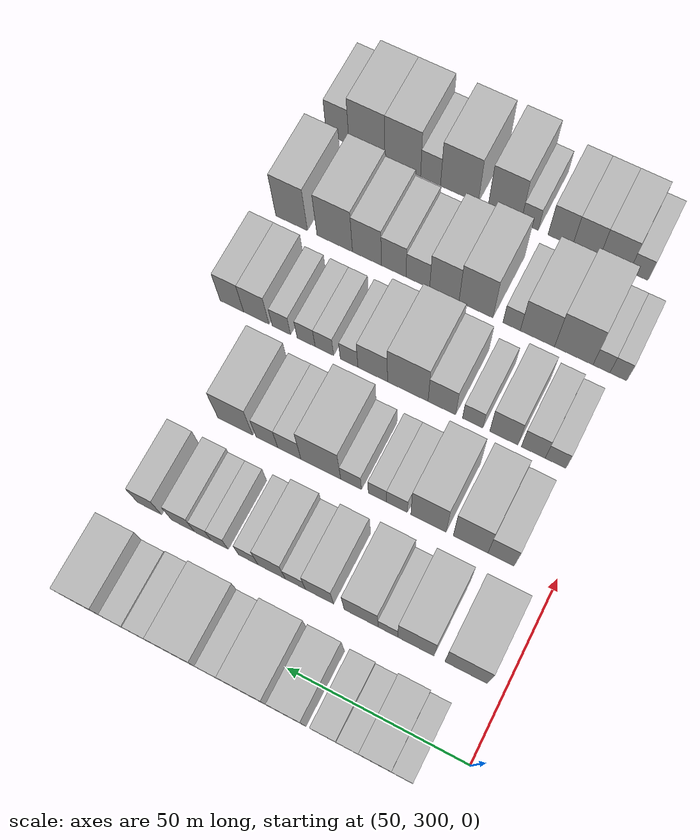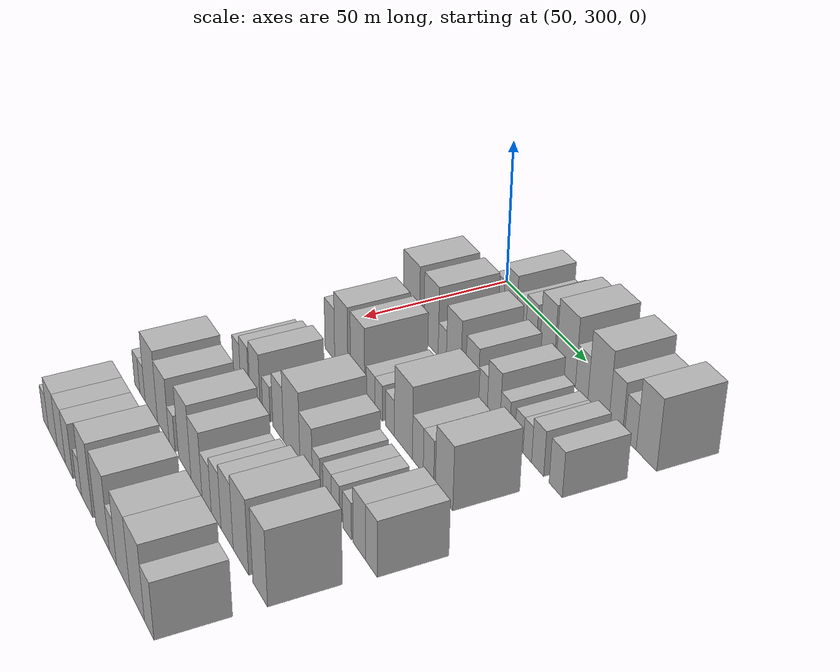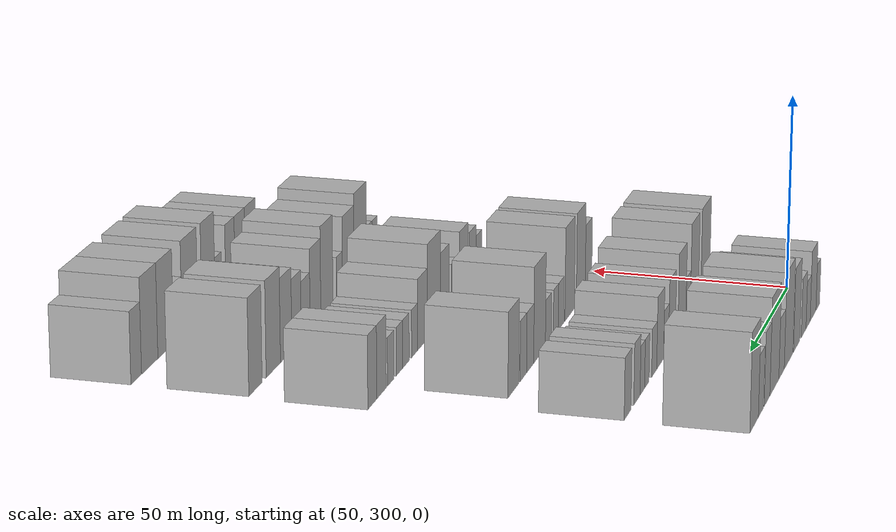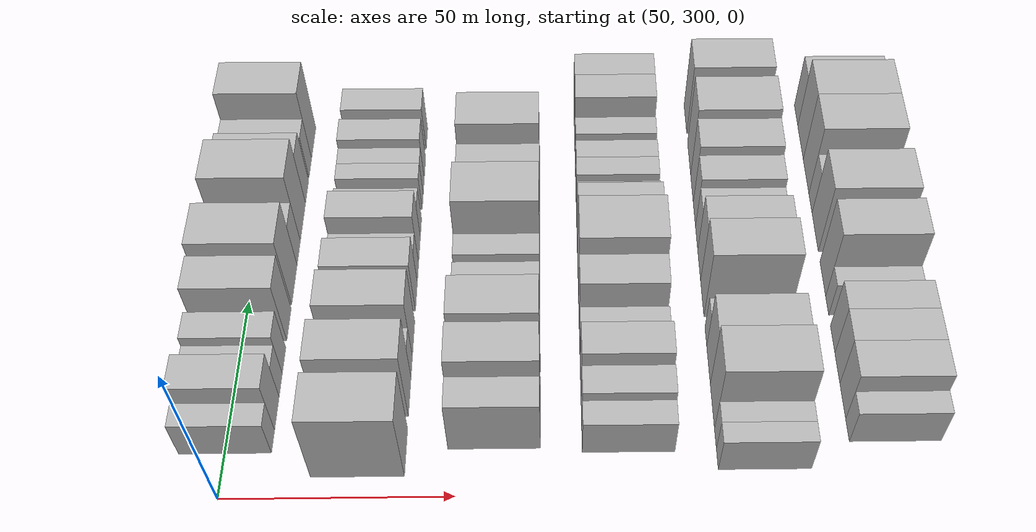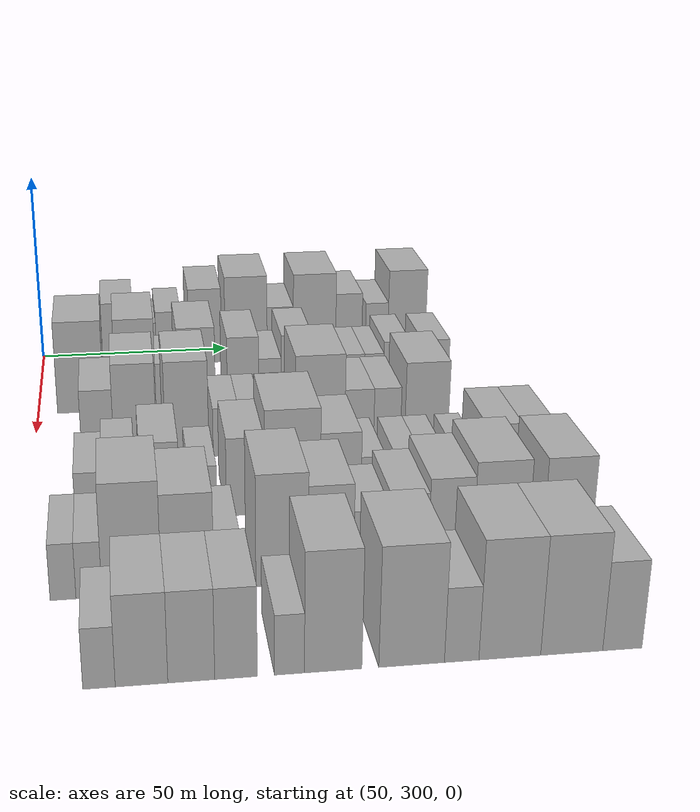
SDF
<sdf version="1.6">
 <world name="default">
  <model name="building_97">
   <static>1</static>
   <pose>50.0000 313.3781 0 0.000000 0.000000 0.000000</pose>
   <link name="link">
    <pose>0 0 6.00 0 0 0</pose>
    <collision name="collision"><geometry><box><size>20.0000 5.5416 12.0000</size></box></geometry></collision>
    <visual name="visual">
     <cast_shadows>0</cast_shadows>
     <geometry><box><size>20.0000 5.5416 12.0000</size></box></geometry>
     <material>
      <script>
       <uri>model://HANNAS_wall/materials/scripts</uri>
       <uri>model://HANNAS_wall/materials/textures</uri>
       <name>vrc/HANNAS_wall</name>
      </script>
     </material>
    </visual>
   </link>
  </model>
  <model name="building_98">
   <static>1</static>
   <pose>50.0000 320.3445 0 0.000000 0.000000 0.000000</pose>
   <link name="link">
    <pose>0 0 9.00 0 0 0</pose>
    <collision name="collision"><geometry><box><size>20.0000 8.3913 18.0000</size></box></geometry></collision>
    <visual name="visual">
     <cast_shadows>0</cast_shadows>
     <geometry><box><size>20.0000 8.3913 18.0000</size></box></geometry>
     <material>
      <script>
       <uri>model://HANNAS_wall/materials/scripts</uri>
       <uri>model://HANNAS_wall/materials/textures</uri>
       <name>vrc/HANNAS_wall</name>
      </script>
     </material>
    </visual>
   </link>
  </model>
  <model name="building_99">
   <static>1</static>
   <pose>50.0000 327.5228 0 0.000000 0.000000 0.000000</pose>
   <link name="link">
    <pose>0 0 6.00 0 0 0</pose>
    <collision name="collision"><geometry><box><size>20.0000 5.9652 12.0000</size></box></geometry></collision>
    <visual name="visual">
     <cast_shadows>0</cast_shadows>
     <geometry><box><size>20.0000 5.9652 12.0000</size></box></geometry>
     <material>
      <script>
       <uri>model://HANNAS_wall/materials/scripts</uri>
       <uri>model://HANNAS_wall/materials/textures</uri>
       <name>vrc/HANNAS_wall</name>
      </script>
     </material>
    </visual>
   </link>
  </model>
  <model name="building_100">
   <static>1</static>
   <pose>50.0000 333.9000 0 0.000000 0.000000 0.000000</pose>
   <link name="link">
    <pose>0 0 7.50 0 0 0</pose>
    <collision name="collision"><geometry><box><size>20.0000 6.7892 15.0000</size></box></geometry></collision>
    <visual name="visual">
     <cast_shadows>0</cast_shadows>
     <geometry><box><size>20.0000 6.7892 15.0000</size></box></geometry>
     <material>
      <script>
       <uri>model://HANNAS_wall/materials/scripts</uri>
       <uri>model://HANNAS_wall/materials/textures</uri>
       <name>vrc/HANNAS_wall</name>
      </script>
     </material>
    </visual>
   </link>
  </model>
  <model name="building_101">
   <static>1</static>
   <pose>50.0000 343.7053 0 0.000000 0.000000 0.000000</pose>
   <link name="link">
    <pose>0 0 10.50 0 0 0</pose>
    <collision name="collision"><geometry><box><size>20.0000 8.8215 21.0000</size></box></geometry></collision>
    <visual name="visual">
     <cast_shadows>0</cast_shadows>
     <geometry><box><size>20.0000 8.8215 21.0000</size></box></geometry>
     <material>
      <script>
       <uri>model://HANNAS_wall/materials/scripts</uri>
       <uri>model://HANNAS_wall/materials/textures</uri>
       <name>vrc/HANNAS_wall</name>
      </script>
     </material>
    </visual>
   </link>
  </model>
  <model name="building_102">
   <static>1</static>
   <pose>50.0000 354.8463 0 0.000000 0.000000 0.000000</pose>
   <link name="link">
    <pose>0 0 12.00 0 0 0</pose>
    <collision name="collision"><geometry><box><size>20.0000 11.4603 24.0000</size></box></geometry></collision>
    <visual name="visual">
     <cast_shadows>0</cast_shadows>
     <geometry><box><size>20.0000 11.4603 24.0000</size></box></geometry>
     <material>
      <script>
       <uri>model://HANNAS_wall/materials/scripts</uri>
       <uri>model://HANNAS_wall/materials/textures</uri>
       <name>vrc/HANNAS_wall</name>
      </script>
     </material>
    </visual>
   </link>
  </model>
  <model name="building_103">
   <static>1</static>
   <pose>50.0000 364.1561 0 0.000000 0.000000 0.000000</pose>
   <link name="link">
    <pose>0 0 7.50 0 0 0</pose>
    <collision name="collision"><geometry><box><size>20.0000 7.1593 15.0000</size></box></geometry></collision>
    <visual name="visual">
     <cast_shadows>0</cast_shadows>
     <geometry><box><size>20.0000 7.1593 15.0000</size></box></geometry>
     <material>
      <script>
       <uri>model://HANNAS_wall/materials/scripts</uri>
       <uri>model://HANNAS_wall/materials/textures</uri>
       <name>vrc/HANNAS_wall</name>
      </script>
     </material>
    </visual>
   </link>
  </model>
  <model name="building_104">
   <static>1</static>
   <pose>50.0000 373.5831 0 0.000000 0.000000 0.000000</pose>
   <link name="link">
    <pose>0 0 12.00 0 0 0</pose>
    <collision name="collision"><geometry><box><size>20.0000 11.6948 24.0000</size></box></geometry></collision>
    <visual name="visual">
     <cast_shadows>0</cast_shadows>
     <geometry><box><size>20.0000 11.6948 24.0000</size></box></geometry>
     <material>
      <script>
       <uri>model://HANNAS_wall/materials/scripts</uri>
       <uri>model://HANNAS_wall/materials/textures</uri>
       <name>vrc/HANNAS_wall</name>
      </script>
     </material>
    </visual>
   </link>
  </model>
  <model name="building_105">
   <static>1</static>
   <pose>50.0000 383.0555 0 0.000000 0.000000 0.000000</pose>
   <link name="link">
    <pose>0 0 9.00 0 0 0</pose>
    <collision name="collision"><geometry><box><size>20.0000 7.2501 18.0000</size></box></geometry></collision>
    <visual name="visual">
     <cast_shadows>0</cast_shadows>
     <geometry><box><size>20.0000 7.2501 18.0000</size></box></geometry>
     <material>
      <script>
       <uri>model://HANNAS_wall/materials/scripts</uri>
       <uri>model://HANNAS_wall/materials/textures</uri>
       <name>vrc/HANNAS_wall</name>
      </script>
     </material>
    </visual>
   </link>
  </model>
  <model name="building_106">
   <static>1</static>
   <pose>50.0000 390.7964 0 0.000000 0.000000 0.000000</pose>
   <link name="link">
    <pose>0 0 7.50 0 0 0</pose>
    <collision name="collision"><geometry><box><size>20.0000 6.2317 15.0000</size></box></geometry></collision>
    <visual name="visual">
     <cast_shadows>0</cast_shadows>
     <geometry><box><size>20.0000 6.2317 15.0000</size></box></geometry>
     <material>
      <script>
       <uri>model://HANNAS_wall/materials/scripts</uri>
       <uri>model://HANNAS_wall/materials/textures</uri>
       <name>vrc/HANNAS_wall</name>
      </script>
     </material>
    </visual>
   </link>
  </model>
  <model name="building_107">
   <static>1</static>
   <pose>50.0000 399.1808 0 0.000000 0.000000 0.000000</pose>
   <link name="link">
    <pose>0 0 12.00 0 0 0</pose>
    <collision name="collision"><geometry><box><size>20.0000 10.5371 24.0000</size></box></geometry></collision>
    <visual name="visual">
     <cast_shadows>0</cast_shadows>
     <geometry><box><size>20.0000 10.5371 24.0000</size></box></geometry>
     <material>
      <script>
       <uri>model://HANNAS_wall/materials/scripts</uri>
       <uri>model://HANNAS_wall/materials/textures</uri>
       <name>vrc/HANNAS_wall</name>
      </script>
     </material>
    </visual>
   </link>
  </model>
  <model name="building_210">
   <static>1</static>
   <pose>79.0000 310.5097 0 0.000000 0.000000 0.000000</pose>
   <link name="link">
    <pose>0 0 12.00 0 0 0</pose>
    <collision name="collision"><geometry><box><size>20.0000 11.4458 24.0000</size></box></geometry></collision>
    <visual name="visual">
     <cast_shadows>0</cast_shadows>
     <geometry><box><size>20.0000 11.4458 24.0000</size></box></geometry>
     <material>
      <script>
       <uri>model://HANNAS_wall/materials/scripts</uri>
       <uri>model://HANNAS_wall/materials/textures</uri>
       <name>vrc/HANNAS_wall</name>
      </script>
     </material>
    </visual>
   </link>
  </model>
  <model name="building_211">
   <static>1</static>
   <pose>79.0000 324.2015 0 0.000000 0.000000 0.000000</pose>
   <link name="link">
    <pose>0 0 12.00 0 0 0</pose>
    <collision name="collision"><geometry><box><size>20.0000 9.9378 24.0000</size></box></geometry></collision>
    <visual name="visual">
     <cast_shadows>0</cast_shadows>
     <geometry><box><size>20.0000 9.9378 24.0000</size></box></geometry>
     <material>
      <script>
       <uri>model://HANNAS_wall/materials/scripts</uri>
       <uri>model://HANNAS_wall/materials/textures</uri>
       <name>vrc/HANNAS_wall</name>
      </script>
     </material>
    </visual>
   </link>
  </model>
  <model name="building_212">
   <static>1</static>
   <pose>79.0000 331.8921 0 0.000000 0.000000 0.000000</pose>
   <link name="link">
    <pose>0 0 6.00 0 0 0</pose>
    <collision name="collision"><geometry><box><size>20.0000 5.4434 12.0000</size></box></geometry></collision>
    <visual name="visual">
     <cast_shadows>0</cast_shadows>
     <geometry><box><size>20.0000 5.4434 12.0000</size></box></geometry>
     <material>
      <script>
       <uri>model://HANNAS_wall/materials/scripts</uri>
       <uri>model://HANNAS_wall/materials/textures</uri>
       <name>vrc/HANNAS_wall</name>
      </script>
     </material>
    </visual>
   </link>
  </model>
  <model name="building_213">
   <static>1</static>
   <pose>79.0000 339.3611 0 0.000000 0.000000 0.000000</pose>
   <link name="link">
    <pose>0 0 10.50 0 0 0</pose>
    <collision name="collision"><geometry><box><size>20.0000 9.4948 21.0000</size></box></geometry></collision>
    <visual name="visual">
     <cast_shadows>0</cast_shadows>
     <geometry><box><size>20.0000 9.4948 21.0000</size></box></geometry>
     <material>
      <script>
       <uri>model://HANNAS_wall/materials/scripts</uri>
       <uri>model://HANNAS_wall/materials/textures</uri>
       <name>vrc/HANNAS_wall</name>
      </script>
     </material>
    </visual>
   </link>
  </model>
  <model name="building_214">
   <static>1</static>
   <pose>79.0000 351.0797 0 0.000000 0.000000 0.000000</pose>
   <link name="link">
    <pose>0 0 9.00 0 0 0</pose>
    <collision name="collision"><geometry><box><size>20.0000 7.9424 18.0000</size></box></geometry></collision>
    <visual name="visual">
     <cast_shadows>0</cast_shadows>
     <geometry><box><size>20.0000 7.9424 18.0000</size></box></geometry>
     <material>
      <script>
       <uri>model://HANNAS_wall/materials/scripts</uri>
       <uri>model://HANNAS_wall/materials/textures</uri>
       <name>vrc/HANNAS_wall</name>
      </script>
     </material>
    </visual>
   </link>
  </model>
  <model name="building_215">
   <static>1</static>
   <pose>79.0000 357.9109 0 0.000000 0.000000 0.000000</pose>
   <link name="link">
    <pose>0 0 6.00 0 0 0</pose>
    <collision name="collision"><geometry><box><size>20.0000 5.7200 12.0000</size></box></geometry></collision>
    <visual name="visual">
     <cast_shadows>0</cast_shadows>
     <geometry><box><size>20.0000 5.7200 12.0000</size></box></geometry>
     <material>
      <script>
       <uri>model://HANNAS_wall/materials/scripts</uri>
       <uri>model://HANNAS_wall/materials/textures</uri>
       <name>vrc/HANNAS_wall</name>
      </script>
     </material>
    </visual>
   </link>
  </model>
  <model name="building_216">
   <static>1</static>
   <pose>79.0000 364.6596 0 0.000000 0.000000 0.000000</pose>
   <link name="link">
    <pose>0 0 9.00 0 0 0</pose>
    <collision name="collision"><geometry><box><size>20.0000 7.7775 18.0000</size></box></geometry></collision>
    <visual name="visual">
     <cast_shadows>0</cast_shadows>
     <geometry><box><size>20.0000 7.7775 18.0000</size></box></geometry>
     <material>
      <script>
       <uri>model://HANNAS_wall/materials/scripts</uri>
       <uri>model://HANNAS_wall/materials/textures</uri>
       <name>vrc/HANNAS_wall</name>
      </script>
     </material>
    </visual>
   </link>
  </model>
  <model name="building_217">
   <static>1</static>
   <pose>79.0000 371.3721 0 0.000000 0.000000 0.000000</pose>
   <link name="link">
    <pose>0 0 6.00 0 0 0</pose>
    <collision name="collision"><geometry><box><size>20.0000 5.6476 12.0000</size></box></geometry></collision>
    <visual name="visual">
     <cast_shadows>0</cast_shadows>
     <geometry><box><size>20.0000 5.6476 12.0000</size></box></geometry>
     <material>
      <script>
       <uri>model://HANNAS_wall/materials/scripts</uri>
       <uri>model://HANNAS_wall/materials/textures</uri>
       <name>vrc/HANNAS_wall</name>
      </script>
     </material>
    </visual>
   </link>
  </model>
  <model name="building_218">
   <static>1</static>
   <pose>79.0000 379.6240 0 0.000000 0.000000 0.000000</pose>
   <link name="link">
    <pose>0 0 6.00 0 0 0</pose>
    <collision name="collision"><geometry><box><size>20.0000 4.8563 12.0000</size></box></geometry></collision>
    <visual name="visual">
     <cast_shadows>0</cast_shadows>
     <geometry><box><size>20.0000 4.8563 12.0000</size></box></geometry>
     <material>
      <script>
       <uri>model://HANNAS_wall/materials/scripts</uri>
       <uri>model://HANNAS_wall/materials/textures</uri>
       <name>vrc/HANNAS_wall</name>
      </script>
     </material>
    </visual>
   </link>
  </model>
  <model name="building_219">
   <static>1</static>
   <pose>79.0000 384.4965 0 0.000000 0.000000 0.000000</pose>
   <link name="link">
    <pose>0 0 6.00 0 0 0</pose>
    <collision name="collision"><geometry><box><size>20.0000 4.8887 12.0000</size></box></geometry></collision>
    <visual name="visual">
     <cast_shadows>0</cast_shadows>
     <geometry><box><size>20.0000 4.8887 12.0000</size></box></geometry>
     <material>
      <script>
       <uri>model://HANNAS_wall/materials/scripts</uri>
       <uri>model://HANNAS_wall/materials/textures</uri>
       <name>vrc/HANNAS_wall</name>
      </script>
     </material>
    </visual>
   </link>
  </model>
  <model name="building_220">
   <static>1</static>
   <pose>79.0000 390.3231 0 0.000000 0.000000 0.000000</pose>
   <link name="link">
    <pose>0 0 7.50 0 0 0</pose>
    <collision name="collision"><geometry><box><size>20.0000 6.7644 15.0000</size></box></geometry></collision>
    <visual name="visual">
     <cast_shadows>0</cast_shadows>
     <geometry><box><size>20.0000 6.7644 15.0000</size></box></geometry>
     <material>
      <script>
       <uri>model://HANNAS_wall/materials/scripts</uri>
       <uri>model://HANNAS_wall/materials/textures</uri>
       <name>vrc/HANNAS_wall</name>
      </script>
     </material>
    </visual>
   </link>
  </model>
  <model name="building_221">
   <static>1</static>
   <pose>79.0000 400.2734 0 0.000000 0.000000 0.000000</pose>
   <link name="link">
    <pose>0 0 7.50 0 0 0</pose>
    <collision name="collision"><geometry><box><size>20.0000 7.1363 15.0000</size></box></geometry></collision>
    <visual name="visual">
     <cast_shadows>0</cast_shadows>
     <geometry><box><size>20.0000 7.1363 15.0000</size></box></geometry>
     <material>
      <script>
       <uri>model://HANNAS_wall/materials/scripts</uri>
       <uri>model://HANNAS_wall/materials/textures</uri>
       <name>vrc/HANNAS_wall</name>
      </script>
     </material>
    </visual>
   </link>
  </model>
  <model name="building_327">
   <static>1</static>
   <pose>108.0000 314.7892 0 0.000000 0.000000 0.000000</pose>
   <link name="link">
    <pose>0 0 9.00 0 0 0</pose>
    <collision name="collision"><geometry><box><size>20.0000 7.3120 18.0000</size></box></geometry></collision>
    <visual name="visual">
     <cast_shadows>0</cast_shadows>
     <geometry><box><size>20.0000 7.3120 18.0000</size></box></geometry>
     <material>
      <script>
       <uri>model://HANNAS_wall/materials/scripts</uri>
       <uri>model://HANNAS_wall/materials/textures</uri>
       <name>vrc/HANNAS_wall</name>
      </script>
     </material>
    </visual>
   </link>
  </model>
  <model name="building_328">
   <static>1</static>
   <pose>108.0000 323.3239 0 0.000000 0.000000 0.000000</pose>
   <link name="link">
    <pose>0 0 12.00 0 0 0</pose>
    <collision name="collision"><geometry><box><size>20.0000 9.7574 24.0000</size></box></geometry></collision>
    <visual name="visual">
     <cast_shadows>0</cast_shadows>
     <geometry><box><size>20.0000 9.7574 24.0000</size></box></geometry>
     <material>
      <script>
       <uri>model://HANNAS_wall/materials/scripts</uri>
       <uri>model://HANNAS_wall/materials/textures</uri>
       <name>vrc/HANNAS_wall</name>
      </script>
     </material>
    </visual>
   </link>
  </model>
  <model name="building_329">
   <static>1</static>
   <pose>108.0000 335.2101 0 0.000000 0.000000 0.000000</pose>
   <link name="link">
    <pose>0 0 12.00 0 0 0</pose>
    <collision name="collision"><geometry><box><size>20.0000 10.0151 24.0000</size></box></geometry></collision>
    <visual name="visual">
     <cast_shadows>0</cast_shadows>
     <geometry><box><size>20.0000 10.0151 24.0000</size></box></geometry>
     <material>
      <script>
       <uri>model://HANNAS_wall/materials/scripts</uri>
       <uri>model://HANNAS_wall/materials/textures</uri>
       <name>vrc/HANNAS_wall</name>
      </script>
     </material>
    </visual>
   </link>
  </model>
  <model name="building_330">
   <static>1</static>
   <pose>108.0000 344.1979 0 0.000000 0.000000 0.000000</pose>
   <link name="link">
    <pose>0 0 6.00 0 0 0</pose>
    <collision name="collision"><geometry><box><size>20.0000 5.9604 12.0000</size></box></geometry></collision>
    <visual name="visual">
     <cast_shadows>0</cast_shadows>
     <geometry><box><size>20.0000 5.9604 12.0000</size></box></geometry>
     <material>
      <script>
       <uri>model://HANNAS_wall/materials/scripts</uri>
       <uri>model://HANNAS_wall/materials/textures</uri>
       <name>vrc/HANNAS_wall</name>
      </script>
     </material>
    </visual>
   </link>
  </model>
  <model name="building_331">
   <static>1</static>
   <pose>108.0000 349.7894 0 0.000000 0.000000 0.000000</pose>
   <link name="link">
    <pose>0 0 6.00 0 0 0</pose>
    <collision name="collision"><geometry><box><size>20.0000 5.2227 12.0000</size></box></geometry></collision>
    <visual name="visual">
     <cast_shadows>0</cast_shadows>
     <geometry><box><size>20.0000 5.2227 12.0000</size></box></geometry>
     <material>
      <script>
       <uri>model://HANNAS_wall/materials/scripts</uri>
       <uri>model://HANNAS_wall/materials/textures</uri>
       <name>vrc/HANNAS_wall</name>
      </script>
     </material>
    </visual>
   </link>
  </model>
  <model name="building_332">
   <static>1</static>
   <pose>108.0000 357.3980 0 0.000000 0.000000 0.000000</pose>
   <link name="link">
    <pose>0 0 6.00 0 0 0</pose>
    <collision name="collision"><geometry><box><size>20.0000 5.9944 12.0000</size></box></geometry></collision>
    <visual name="visual">
     <cast_shadows>0</cast_shadows>
     <geometry><box><size>20.0000 5.9944 12.0000</size></box></geometry>
     <material>
      <script>
       <uri>model://HANNAS_wall/materials/scripts</uri>
       <uri>model://HANNAS_wall/materials/textures</uri>
       <name>vrc/HANNAS_wall</name>
      </script>
     </material>
    </visual>
   </link>
  </model>
  <model name="building_333">
   <static>1</static>
   <pose>108.0000 366.2134 0 0.000000 0.000000 0.000000</pose>
   <link name="link">
    <pose>0 0 12.00 0 0 0</pose>
    <collision name="collision"><geometry><box><size>20.0000 11.6365 24.0000</size></box></geometry></collision>
    <visual name="visual">
     <cast_shadows>0</cast_shadows>
     <geometry><box><size>20.0000 11.6365 24.0000</size></box></geometry>
     <material>
      <script>
       <uri>model://HANNAS_wall/materials/scripts</uri>
       <uri>model://HANNAS_wall/materials/textures</uri>
       <name>vrc/HANNAS_wall</name>
      </script>
     </material>
    </visual>
   </link>
  </model>
  <model name="building_334">
   <static>1</static>
   <pose>108.0000 375.4648 0 0.000000 0.000000 0.000000</pose>
   <link name="link">
    <pose>0 0 7.50 0 0 0</pose>
    <collision name="collision"><geometry><box><size>20.0000 6.8662 15.0000</size></box></geometry></collision>
    <visual name="visual">
     <cast_shadows>0</cast_shadows>
     <geometry><box><size>20.0000 6.8662 15.0000</size></box></geometry>
     <material>
      <script>
       <uri>model://HANNAS_wall/materials/scripts</uri>
       <uri>model://HANNAS_wall/materials/textures</uri>
       <name>vrc/HANNAS_wall</name>
      </script>
     </material>
    </visual>
   </link>
  </model>
  <model name="building_335">
   <static>1</static>
   <pose>108.0000 382.1025 0 0.000000 0.000000 0.000000</pose>
   <link name="link">
    <pose>0 0 7.50 0 0 0</pose>
    <collision name="collision"><geometry><box><size>20.0000 6.4092 15.0000</size></box></geometry></collision>
    <visual name="visual">
     <cast_shadows>0</cast_shadows>
     <geometry><box><size>20.0000 6.4092 15.0000</size></box></geometry>
     <material>
      <script>
       <uri>model://HANNAS_wall/materials/scripts</uri>
       <uri>model://HANNAS_wall/materials/textures</uri>
       <name>vrc/HANNAS_wall</name>
      </script>
     </material>
    </visual>
   </link>
  </model>
  <model name="building_336">
   <static>1</static>
   <pose>108.0000 391.5131 0 0.000000 0.000000 0.000000</pose>
   <link name="link">
    <pose>0 0 10.50 0 0 0</pose>
    <collision name="collision"><geometry><box><size>20.0000 10.4119 21.0000</size></box></geometry></collision>
    <visual name="visual">
     <cast_shadows>0</cast_shadows>
     <geometry><box><size>20.0000 10.4119 21.0000</size></box></geometry>
     <material>
      <script>
       <uri>model://HANNAS_wall/materials/scripts</uri>
       <uri>model://HANNAS_wall/materials/textures</uri>
       <name>vrc/HANNAS_wall</name>
      </script>
     </material>
    </visual>
   </link>
  </model>
  <model name="building_427">
   <static>1</static>
   <pose>137.0000 312.9815 0 0.000000 0.000000 0.000000</pose>
   <link name="link">
    <pose>0 0 6.00 0 0 0</pose>
    <collision name="collision"><geometry><box><size>20.0000 5.8793 12.0000</size></box></geometry></collision>
    <visual name="visual">
     <cast_shadows>0</cast_shadows>
     <geometry><box><size>20.0000 5.8793 12.0000</size></box></geometry>
     <material>
      <script>
       <uri>model://HANNAS_wall/materials/scripts</uri>
       <uri>model://HANNAS_wall/materials/textures</uri>
       <name>vrc/HANNAS_wall</name>
      </script>
     </material>
    </visual>
   </link>
  </model>
  <model name="building_428">
   <static>1</static>
   <pose>137.0000 319.3429 0 0.000000 0.000000 0.000000</pose>
   <link name="link">
    <pose>0 0 7.50 0 0 0</pose>
    <collision name="collision"><geometry><box><size>20.0000 6.8436 15.0000</size></box></geometry></collision>
    <visual name="visual">
     <cast_shadows>0</cast_shadows>
     <geometry><box><size>20.0000 6.8436 15.0000</size></box></geometry>
     <material>
      <script>
       <uri>model://HANNAS_wall/materials/scripts</uri>
       <uri>model://HANNAS_wall/materials/textures</uri>
       <name>vrc/HANNAS_wall</name>
      </script>
     </material>
    </visual>
   </link>
  </model>
  <model name="building_429">
   <static>1</static>
   <pose>137.0000 327.8097 0 0.000000 0.000000 0.000000</pose>
   <link name="link">
    <pose>0 0 9.00 0 0 0</pose>
    <collision name="collision"><geometry><box><size>20.0000 8.0899 18.0000</size></box></geometry></collision>
    <visual name="visual">
     <cast_shadows>0</cast_shadows>
     <geometry><box><size>20.0000 8.0899 18.0000</size></box></geometry>
     <material>
      <script>
       <uri>model://HANNAS_wall/materials/scripts</uri>
       <uri>model://HANNAS_wall/materials/textures</uri>
       <name>vrc/HANNAS_wall</name>
      </script>
     </material>
    </visual>
   </link>
  </model>
  <model name="building_430">
   <static>1</static>
   <pose>137.0000 336.7981 0 0.000000 0.000000 0.000000</pose>
   <link name="link">
    <pose>0 0 6.00 0 0 0</pose>
    <collision name="collision"><geometry><box><size>20.0000 5.8870 12.0000</size></box></geometry></collision>
    <visual name="visual">
     <cast_shadows>0</cast_shadows>
     <geometry><box><size>20.0000 5.8870 12.0000</size></box></geometry>
     <material>
      <script>
       <uri>model://HANNAS_wall/materials/scripts</uri>
       <uri>model://HANNAS_wall/materials/textures</uri>
       <name>vrc/HANNAS_wall</name>
      </script>
     </material>
    </visual>
   </link>
  </model>
  <model name="building_431">
   <static>1</static>
   <pose>137.0000 345.7841 0 0.000000 0.000000 0.000000</pose>
   <link name="link">
    <pose>0 0 9.00 0 0 0</pose>
    <collision name="collision"><geometry><box><size>20.0000 8.0849 18.0000</size></box></geometry></collision>
    <visual name="visual">
     <cast_shadows>0</cast_shadows>
     <geometry><box><size>20.0000 8.0849 18.0000</size></box></geometry>
     <material>
      <script>
       <uri>model://HANNAS_wall/materials/scripts</uri>
       <uri>model://HANNAS_wall/materials/textures</uri>
       <name>vrc/HANNAS_wall</name>
      </script>
     </material>
    </visual>
   </link>
  </model>
  <model name="building_432">
   <static>1</static>
   <pose>137.0000 355.8091 0 0.000000 0.000000 0.000000</pose>
   <link name="link">
    <pose>0 0 12.00 0 0 0</pose>
    <collision name="collision"><geometry><box><size>20.0000 11.9651 24.0000</size></box></geometry></collision>
    <visual name="visual">
     <cast_shadows>0</cast_shadows>
     <geometry><box><size>20.0000 11.9651 24.0000</size></box></geometry>
     <material>
      <script>
       <uri>model://HANNAS_wall/materials/scripts</uri>
       <uri>model://HANNAS_wall/materials/textures</uri>
       <name>vrc/HANNAS_wall</name>
      </script>
     </material>
    </visual>
   </link>
  </model>
  <model name="building_433">
   <static>1</static>
   <pose>137.0000 366.1803 0 0.000000 0.000000 0.000000</pose>
   <link name="link">
    <pose>0 0 9.00 0 0 0</pose>
    <collision name="collision"><geometry><box><size>20.0000 8.7775 18.0000</size></box></geometry></collision>
    <visual name="visual">
     <cast_shadows>0</cast_shadows>
     <geometry><box><size>20.0000 8.7775 18.0000</size></box></geometry>
     <material>
      <script>
       <uri>model://HANNAS_wall/materials/scripts</uri>
       <uri>model://HANNAS_wall/materials/textures</uri>
       <name>vrc/HANNAS_wall</name>
      </script>
     </material>
    </visual>
   </link>
  </model>
  <model name="building_434">
   <static>1</static>
   <pose>137.0000 373.2135 0 0.000000 0.000000 0.000000</pose>
   <link name="link">
    <pose>0 0 6.00 0 0 0</pose>
    <collision name="collision"><geometry><box><size>20.0000 5.2887 12.0000</size></box></geometry></collision>
    <visual name="visual">
     <cast_shadows>0</cast_shadows>
     <geometry><box><size>20.0000 5.2887 12.0000</size></box></geometry>
     <material>
      <script>
       <uri>model://HANNAS_wall/materials/scripts</uri>
       <uri>model://HANNAS_wall/materials/textures</uri>
       <name>vrc/HANNAS_wall</name>
      </script>
     </material>
    </visual>
   </link>
  </model>
  <model name="building_435">
   <static>1</static>
   <pose>137.0000 380.6514 0 0.000000 0.000000 0.000000</pose>
   <link name="link">
    <pose>0 0 6.00 0 0 0</pose>
    <collision name="collision"><geometry><box><size>20.0000 5.5873 12.0000</size></box></geometry></collision>
    <visual name="visual">
     <cast_shadows>0</cast_shadows>
     <geometry><box><size>20.0000 5.5873 12.0000</size></box></geometry>
     <material>
      <script>
       <uri>model://HANNAS_wall/materials/scripts</uri>
       <uri>model://HANNAS_wall/materials/textures</uri>
       <name>vrc/HANNAS_wall</name>
      </script>
     </material>
    </visual>
   </link>
  </model>
  <model name="building_436">
   <static>1</static>
   <pose>137.0000 386.1709 0 0.000000 0.000000 0.000000</pose>
   <link name="link">
    <pose>0 0 6.00 0 0 0</pose>
    <collision name="collision"><geometry><box><size>20.0000 5.4516 12.0000</size></box></geometry></collision>
    <visual name="visual">
     <cast_shadows>0</cast_shadows>
     <geometry><box><size>20.0000 5.4516 12.0000</size></box></geometry>
     <material>
      <script>
       <uri>model://HANNAS_wall/materials/scripts</uri>
       <uri>model://HANNAS_wall/materials/textures</uri>
       <name>vrc/HANNAS_wall</name>
      </script>
     </material>
    </visual>
   </link>
  </model>
  <model name="building_437">
   <static>1</static>
   <pose>137.0000 393.6852 0 0.000000 0.000000 0.000000</pose>
   <link name="link">
    <pose>0 0 6.00 0 0 0</pose>
    <collision name="collision"><geometry><box><size>20.0000 5.5772 12.0000</size></box></geometry></collision>
    <visual name="visual">
     <cast_shadows>0</cast_shadows>
     <geometry><box><size>20.0000 5.5772 12.0000</size></box></geometry>
     <material>
      <script>
       <uri>model://HANNAS_wall/materials/scripts</uri>
       <uri>model://HANNAS_wall/materials/textures</uri>
       <name>vrc/HANNAS_wall</name>
      </script>
     </material>
    </visual>
   </link>
  </model>
  <model name="building_438">
   <static>1</static>
   <pose>137.0000 401.3744 0 0.000000 0.000000 0.000000</pose>
   <link name="link">
    <pose>0 0 9.00 0 0 0</pose>
    <collision name="collision"><geometry><box><size>20.0000 7.8012 18.0000</size></box></geometry></collision>
    <visual name="visual">
     <cast_shadows>0</cast_shadows>
     <geometry><box><size>20.0000 7.8012 18.0000</size></box></geometry>
     <material>
      <script>
       <uri>model://HANNAS_wall/materials/scripts</uri>
       <uri>model://HANNAS_wall/materials/textures</uri>
       <name>vrc/HANNAS_wall</name>
      </script>
     </material>
    </visual>
   </link>
  </model>
  <model name="building_439">
   <static>1</static>
   <pose>137.0000 408.8892 0 0.000000 0.000000 0.000000</pose>
   <link name="link">
    <pose>0 0 9.00 0 0 0</pose>
    <collision name="collision"><geometry><box><size>20.0000 7.2284 18.0000</size></box></geometry></collision>
    <visual name="visual">
     <cast_shadows>0</cast_shadows>
     <geometry><box><size>20.0000 7.2284 18.0000</size></box></geometry>
     <material>
      <script>
       <uri>model://HANNAS_wall/materials/scripts</uri>
       <uri>model://HANNAS_wall/materials/textures</uri>
       <name>vrc/HANNAS_wall</name>
      </script>
     </material>
    </visual>
   </link>
  </model>
  <model name="building_543">
   <static>1</static>
   <pose>166.0000 308.0684 0 0.000000 0.000000 0.000000</pose>
   <link name="link">
    <pose>0 0 6.00 0 0 0</pose>
    <collision name="collision"><geometry><box><size>20.0000 4.8620 12.0000</size></box></geometry></collision>
    <visual name="visual">
     <cast_shadows>0</cast_shadows>
     <geometry><box><size>20.0000 4.8620 12.0000</size></box></geometry>
     <material>
      <script>
       <uri>model://HANNAS_wall/materials/scripts</uri>
       <uri>model://HANNAS_wall/materials/textures</uri>
       <name>vrc/HANNAS_wall</name>
      </script>
     </material>
    </visual>
   </link>
  </model>
  <model name="building_544">
   <static>1</static>
   <pose>166.0000 312.9431 0 0.000000 0.000000 0.000000</pose>
   <link name="link">
    <pose>0 0 6.00 0 0 0</pose>
    <collision name="collision"><geometry><box><size>20.0000 4.8875 12.0000</size></box></geometry></collision>
    <visual name="visual">
     <cast_shadows>0</cast_shadows>
     <geometry><box><size>20.0000 4.8875 12.0000</size></box></geometry>
     <material>
      <script>
       <uri>model://HANNAS_wall/materials/scripts</uri>
       <uri>model://HANNAS_wall/materials/textures</uri>
       <name>vrc/HANNAS_wall</name>
      </script>
     </material>
    </visual>
   </link>
  </model>
  <model name="building_545">
   <static>1</static>
   <pose>166.0000 321.0095 0 0.000000 0.000000 0.000000</pose>
   <link name="link">
    <pose>0 0 12.00 0 0 0</pose>
    <collision name="collision"><geometry><box><size>20.0000 11.2453 24.0000</size></box></geometry></collision>
    <visual name="visual">
     <cast_shadows>0</cast_shadows>
     <geometry><box><size>20.0000 11.2453 24.0000</size></box></geometry>
     <material>
      <script>
       <uri>model://HANNAS_wall/materials/scripts</uri>
       <uri>model://HANNAS_wall/materials/textures</uri>
       <name>vrc/HANNAS_wall</name>
      </script>
     </material>
    </visual>
   </link>
  </model>
  <model name="building_546">
   <static>1</static>
   <pose>166.0000 331.6683 0 0.000000 0.000000 0.000000</pose>
   <link name="link">
    <pose>0 0 10.50 0 0 0</pose>
    <collision name="collision"><geometry><box><size>20.0000 10.0723 21.0000</size></box></geometry></collision>
    <visual name="visual">
     <cast_shadows>0</cast_shadows>
     <geometry><box><size>20.0000 10.0723 21.0000</size></box></geometry>
     <material>
      <script>
       <uri>model://HANNAS_wall/materials/scripts</uri>
       <uri>model://HANNAS_wall/materials/textures</uri>
       <name>vrc/HANNAS_wall</name>
      </script>
     </material>
    </visual>
   </link>
  </model>
  <model name="building_547">
   <static>1</static>
   <pose>166.0000 339.2610 0 0.000000 0.000000 0.000000</pose>
   <link name="link">
    <pose>0 0 6.00 0 0 0</pose>
    <collision name="collision"><geometry><box><size>20.0000 5.1132 12.0000</size></box></geometry></collision>
    <visual name="visual">
     <cast_shadows>0</cast_shadows>
     <geometry><box><size>20.0000 5.1132 12.0000</size></box></geometry>
     <material>
      <script>
       <uri>model://HANNAS_wall/materials/scripts</uri>
       <uri>model://HANNAS_wall/materials/textures</uri>
       <name>vrc/HANNAS_wall</name>
      </script>
     </material>
    </visual>
   </link>
  </model>
  <model name="building_548">
   <static>1</static>
   <pose>166.0000 349.9033 0 0.000000 0.000000 0.000000</pose>
   <link name="link">
    <pose>0 0 12.00 0 0 0</pose>
    <collision name="collision"><geometry><box><size>20.0000 10.1715 24.0000</size></box></geometry></collision>
    <visual name="visual">
     <cast_shadows>0</cast_shadows>
     <geometry><box><size>20.0000 10.1715 24.0000</size></box></geometry>
     <material>
      <script>
       <uri>model://HANNAS_wall/materials/scripts</uri>
       <uri>model://HANNAS_wall/materials/textures</uri>
       <name>vrc/HANNAS_wall</name>
      </script>
     </material>
    </visual>
   </link>
  </model>
  <model name="building_549">
   <static>1</static>
   <pose>166.0000 359.4024 0 0.000000 0.000000 0.000000</pose>
   <link name="link">
    <pose>0 0 10.50 0 0 0</pose>
    <collision name="collision"><geometry><box><size>20.0000 8.8267 21.0000</size></box></geometry></collision>
    <visual name="visual">
     <cast_shadows>0</cast_shadows>
     <geometry><box><size>20.0000 8.8267 21.0000</size></box></geometry>
     <material>
      <script>
       <uri>model://HANNAS_wall/materials/scripts</uri>
       <uri>model://HANNAS_wall/materials/textures</uri>
       <name>vrc/HANNAS_wall</name>
      </script>
     </material>
    </visual>
   </link>
  </model>
  <model name="building_550">
   <static>1</static>
   <pose>166.0000 367.4066 0 0.000000 0.000000 0.000000</pose>
   <link name="link">
    <pose>0 0 7.50 0 0 0</pose>
    <collision name="collision"><geometry><box><size>20.0000 7.1817 15.0000</size></box></geometry></collision>
    <visual name="visual">
     <cast_shadows>0</cast_shadows>
     <geometry><box><size>20.0000 7.1817 15.0000</size></box></geometry>
     <material>
      <script>
       <uri>model://HANNAS_wall/materials/scripts</uri>
       <uri>model://HANNAS_wall/materials/textures</uri>
       <name>vrc/HANNAS_wall</name>
      </script>
     </material>
    </visual>
   </link>
  </model>
  <model name="building_551">
   <static>1</static>
   <pose>166.0000 374.7488 0 0.000000 0.000000 0.000000</pose>
   <link name="link">
    <pose>0 0 9.00 0 0 0</pose>
    <collision name="collision"><geometry><box><size>20.0000 7.5027 18.0000</size></box></geometry></collision>
    <visual name="visual">
     <cast_shadows>0</cast_shadows>
     <geometry><box><size>20.0000 7.5027 18.0000</size></box></geometry>
     <material>
      <script>
       <uri>model://HANNAS_wall/materials/scripts</uri>
       <uri>model://HANNAS_wall/materials/textures</uri>
       <name>vrc/HANNAS_wall</name>
      </script>
     </material>
    </visual>
   </link>
  </model>
  <model name="building_552">
   <static>1</static>
   <pose>166.0000 382.9599 0 0.000000 0.000000 0.000000</pose>
   <link name="link">
    <pose>0 0 10.50 0 0 0</pose>
    <collision name="collision"><geometry><box><size>20.0000 8.9196 21.0000</size></box></geometry></collision>
    <visual name="visual">
     <cast_shadows>0</cast_shadows>
     <geometry><box><size>20.0000 8.9196 21.0000</size></box></geometry>
     <material>
      <script>
       <uri>model://HANNAS_wall/materials/scripts</uri>
       <uri>model://HANNAS_wall/materials/textures</uri>
       <name>vrc/HANNAS_wall</name>
      </script>
     </material>
    </visual>
   </link>
  </model>
  <model name="building_553">
   <static>1</static>
   <pose>166.0000 392.9123 0 0.000000 0.000000 0.000000</pose>
   <link name="link">
    <pose>0 0 12.00 0 0 0</pose>
    <collision name="collision"><geometry><box><size>20.0000 10.9851 24.0000</size></box></geometry></collision>
    <visual name="visual">
     <cast_shadows>0</cast_shadows>
     <geometry><box><size>20.0000 10.9851 24.0000</size></box></geometry>
     <material>
      <script>
       <uri>model://HANNAS_wall/materials/scripts</uri>
       <uri>model://HANNAS_wall/materials/textures</uri>
       <name>vrc/HANNAS_wall</name>
      </script>
     </material>
    </visual>
   </link>
  </model>
  <model name="building_554">
   <static>1</static>
   <pose>166.0000 406.3574 0 0.000000 0.000000 0.000000</pose>
   <link name="link">
    <pose>0 0 12.00 0 0 0</pose>
    <collision name="collision"><geometry><box><size>20.0000 9.9051 24.0000</size></box></geometry></collision>
    <visual name="visual">
     <cast_shadows>0</cast_shadows>
     <geometry><box><size>20.0000 9.9051 24.0000</size></box></geometry>
     <material>
      <script>
       <uri>model://HANNAS_wall/materials/scripts</uri>
       <uri>model://HANNAS_wall/materials/textures</uri>
       <name>vrc/HANNAS_wall</name>
      </script>
     </material>
    </visual>
   </link>
  </model>
  <model name="building_662">
   <static>1</static>
   <pose>195.0000 314.7716 0 0.000000 0.000000 0.000000</pose>
   <link name="link">
    <pose>0 0 6.00 0 0 0</pose>
    <collision name="collision"><geometry><box><size>20.0000 5.4955 12.0000</size></box></geometry></collision>
    <visual name="visual">
     <cast_shadows>0</cast_shadows>
     <geometry><box><size>20.0000 5.4955 12.0000</size></box></geometry>
     <material>
      <script>
       <uri>model://HANNAS_wall/materials/scripts</uri>
       <uri>model://HANNAS_wall/materials/textures</uri>
       <name>vrc/HANNAS_wall</name>
      </script>
     </material>
    </visual>
   </link>
  </model>
  <model name="building_663">
   <static>1</static>
   <pose>195.0000 321.9980 0 0.000000 0.000000 0.000000</pose>
   <link name="link">
    <pose>0 0 9.00 0 0 0</pose>
    <collision name="collision"><geometry><box><size>20.0000 8.9575 18.0000</size></box></geometry></collision>
    <visual name="visual">
     <cast_shadows>0</cast_shadows>
     <geometry><box><size>20.0000 8.9575 18.0000</size></box></geometry>
     <material>
      <script>
       <uri>model://HANNAS_wall/materials/scripts</uri>
       <uri>model://HANNAS_wall/materials/textures</uri>
       <name>vrc/HANNAS_wall</name>
      </script>
     </material>
    </visual>
   </link>
  </model>
  <model name="building_664">
   <static>1</static>
   <pose>195.0000 330.5044 0 0.000000 0.000000 0.000000</pose>
   <link name="link">
    <pose>0 0 9.00 0 0 0</pose>
    <collision name="collision"><geometry><box><size>20.0000 8.0552 18.0000</size></box></geometry></collision>
    <visual name="visual">
     <cast_shadows>0</cast_shadows>
     <geometry><box><size>20.0000 8.0552 18.0000</size></box></geometry>
     <material>
      <script>
       <uri>model://HANNAS_wall/materials/scripts</uri>
       <uri>model://HANNAS_wall/materials/textures</uri>
       <name>vrc/HANNAS_wall</name>
      </script>
     </material>
    </visual>
   </link>
  </model>
  <model name="building_665">
   <static>1</static>
   <pose>195.0000 338.2106 0 0.000000 0.000000 0.000000</pose>
   <link name="link">
    <pose>0 0 9.00 0 0 0</pose>
    <collision name="collision"><geometry><box><size>20.0000 7.3572 18.0000</size></box></geometry></collision>
    <visual name="visual">
     <cast_shadows>0</cast_shadows>
     <geometry><box><size>20.0000 7.3572 18.0000</size></box></geometry>
     <material>
      <script>
       <uri>model://HANNAS_wall/materials/scripts</uri>
       <uri>model://HANNAS_wall/materials/textures</uri>
       <name>vrc/HANNAS_wall</name>
      </script>
     </material>
    </visual>
   </link>
  </model>
  <model name="building_666">
   <static>1</static>
   <pose>195.0000 347.4928 0 0.000000 0.000000 0.000000</pose>
   <link name="link">
    <pose>0 0 6.00 0 0 0</pose>
    <collision name="collision"><geometry><box><size>20.0000 5.2071 12.0000</size></box></geometry></collision>
    <visual name="visual">
     <cast_shadows>0</cast_shadows>
     <geometry><box><size>20.0000 5.2071 12.0000</size></box></geometry>
     <material>
      <script>
       <uri>model://HANNAS_wall/materials/scripts</uri>
       <uri>model://HANNAS_wall/materials/textures</uri>
       <name>vrc/HANNAS_wall</name>
      </script>
     </material>
    </visual>
   </link>
  </model>
  <model name="building_667">
   <static>1</static>
   <pose>195.0000 355.1544 0 0.000000 0.000000 0.000000</pose>
   <link name="link">
    <pose>0 0 12.00 0 0 0</pose>
    <collision name="collision"><geometry><box><size>20.0000 10.1162 24.0000</size></box></geometry></collision>
    <visual name="visual">
     <cast_shadows>0</cast_shadows>
     <geometry><box><size>20.0000 10.1162 24.0000</size></box></geometry>
     <material>
      <script>
       <uri>model://HANNAS_wall/materials/scripts</uri>
       <uri>model://HANNAS_wall/materials/textures</uri>
       <name>vrc/HANNAS_wall</name>
      </script>
     </material>
    </visual>
   </link>
  </model>
  <model name="building_668">
   <static>1</static>
   <pose>195.0000 369.0654 0 0.000000 0.000000 0.000000</pose>
   <link name="link">
    <pose>0 0 12.00 0 0 0</pose>
    <collision name="collision"><geometry><box><size>20.0000 11.7057 24.0000</size></box></geometry></collision>
    <visual name="visual">
     <cast_shadows>0</cast_shadows>
     <geometry><box><size>20.0000 11.7057 24.0000</size></box></geometry>
     <material>
      <script>
       <uri>model://HANNAS_wall/materials/scripts</uri>
       <uri>model://HANNAS_wall/materials/textures</uri>
       <name>vrc/HANNAS_wall</name>
      </script>
     </material>
    </visual>
   </link>
  </model>
  <model name="building_669">
   <static>1</static>
   <pose>195.0000 378.0196 0 0.000000 0.000000 0.000000</pose>
   <link name="link">
    <pose>0 0 7.50 0 0 0</pose>
    <collision name="collision"><geometry><box><size>20.0000 6.2027 15.0000</size></box></geometry></collision>
    <visual name="visual">
     <cast_shadows>0</cast_shadows>
     <geometry><box><size>20.0000 6.2027 15.0000</size></box></geometry>
     <material>
      <script>
       <uri>model://HANNAS_wall/materials/scripts</uri>
       <uri>model://HANNAS_wall/materials/textures</uri>
       <name>vrc/HANNAS_wall</name>
      </script>
     </material>
    </visual>
   </link>
  </model>
  <model name="building_670">
   <static>1</static>
   <pose>195.0000 386.7319 0 0.000000 0.000000 0.000000</pose>
   <link name="link">
    <pose>0 0 12.00 0 0 0</pose>
    <collision name="collision"><geometry><box><size>20.0000 11.2219 24.0000</size></box></geometry></collision>
    <visual name="visual">
     <cast_shadows>0</cast_shadows>
     <geometry><box><size>20.0000 11.2219 24.0000</size></box></geometry>
     <material>
      <script>
       <uri>model://HANNAS_wall/materials/scripts</uri>
       <uri>model://HANNAS_wall/materials/textures</uri>
       <name>vrc/HANNAS_wall</name>
      </script>
     </material>
    </visual>
   </link>
  </model>
  <model name="building_671">
   <static>1</static>
   <pose>195.0000 398.0302 0 0.000000 0.000000 0.000000</pose>
   <link name="link">
    <pose>0 0 12.00 0 0 0</pose>
    <collision name="collision"><geometry><box><size>20.0000 11.3748 24.0000</size></box></geometry></collision>
    <visual name="visual">
     <cast_shadows>0</cast_shadows>
     <geometry><box><size>20.0000 11.3748 24.0000</size></box></geometry>
     <material>
      <script>
       <uri>model://HANNAS_wall/materials/scripts</uri>
       <uri>model://HANNAS_wall/materials/textures</uri>
       <name>vrc/HANNAS_wall</name>
      </script>
     </material>
    </visual>
   </link>
  </model>
  <model name="building_672">
   <static>1</static>
   <pose>195.0000 407.3525 0 0.000000 0.000000 0.000000</pose>
   <link name="link">
    <pose>0 0 9.00 0 0 0</pose>
    <collision name="collision"><geometry><box><size>20.0000 7.2698 18.0000</size></box></geometry></collision>
    <visual name="visual">
     <cast_shadows>0</cast_shadows>
     <geometry><box><size>20.0000 7.2698 18.0000</size></box></geometry>
     <material>
      <script>
       <uri>model://HANNAS_wall/materials/scripts</uri>
       <uri>model://HANNAS_wall/materials/textures</uri>
       <name>vrc/HANNAS_wall</name>
      </script>
     </material>
    </visual>
   </link>
  </model>
 </world>
</sdf>
